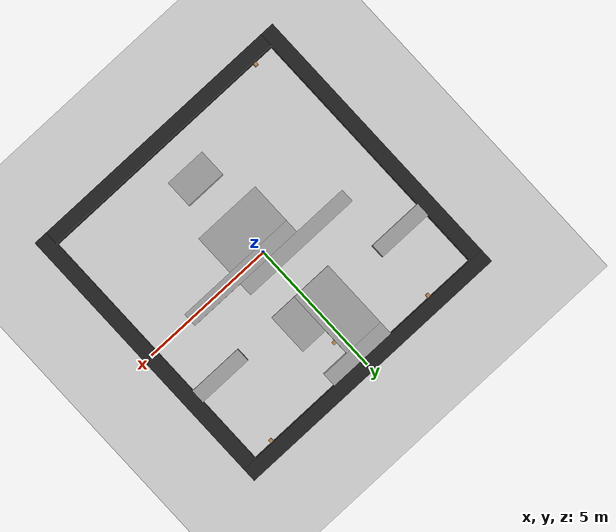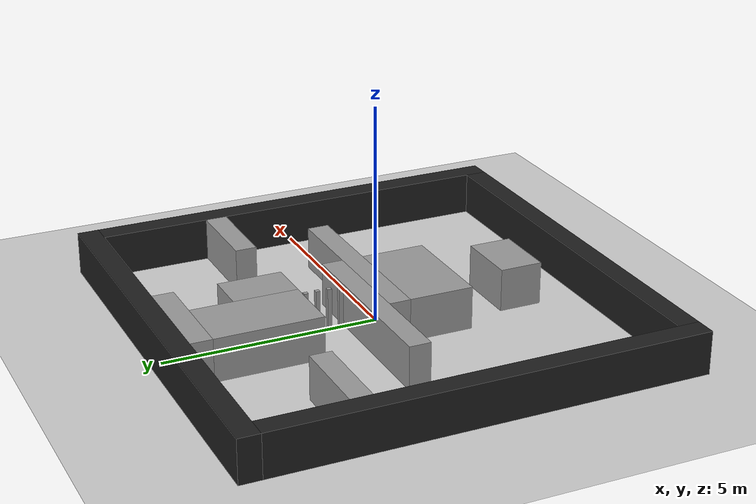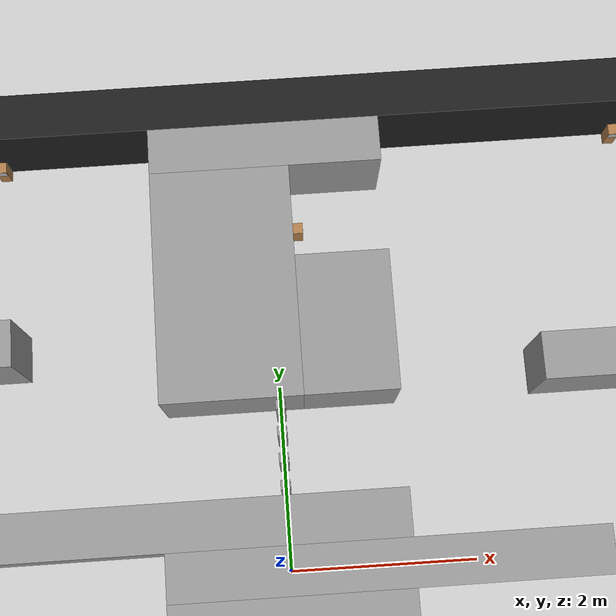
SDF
<?xml version='1.0'?>
<!-- GENERATED by tools/generate_worlds.py - edit the WORLDS table there, not this file. -->
<sdf version='1.7'>
  <world name='default'>
    <light name='sun' type='directional'>
      <cast_shadows>1</cast_shadows>
      <pose>0 0 10 0 -0 0</pose>
      <diffuse>0.8 0.8 0.8 1</diffuse>
      <specular>0.2 0.2 0.2 1</specular>
      <attenuation>
        <range>1000</range>
        <constant>0.9</constant>
        <linear>0.01</linear>
        <quadratic>0.001</quadratic>
      </attenuation>
      <direction>-0.5 0.1 -0.9</direction>
    </light>
    <model name='ground_plane'>
      <static>1</static>
      <link name='link'>
        <collision name='collision'>
          <geometry>
            <plane>
              <normal>0 0 1</normal>
              <size>100 100</size>
            </plane>
          </geometry>
          <surface>
            <friction>
              <ode>
                <mu>100</mu>
                <mu2>50</mu2>
              </ode>
            </friction>
          </surface>
          <max_contacts>10</max_contacts>
        </collision>
        <visual name='visual'>
          <cast_shadows>0</cast_shadows>
          <geometry>
            <plane>
              <normal>0 0 1</normal>
              <size>100 100</size>
            </plane>
          </geometry>
          <material>
            <script>
              <uri>file://media/materials/scripts/gazebo.material</uri>
              <name>Gazebo/Grey</name>
            </script>
          </material>
        </visual>
      </link>
    </model>
    <gravity>0 0 -9.8</gravity>
    <magnetic_field>6e-06 2.3e-05 -4.2e-05</magnetic_field>
    <atmosphere type='adiabatic'/>
    <physics type='ode'>
      <max_step_size>0.001</max_step_size>
      <real_time_factor>1</real_time_factor>
      <real_time_update_rate>1000</real_time_update_rate>
    </physics>
    <scene>
      <ambient>0.4 0.4 0.4 1</ambient>
      <background>0.7 0.7 0.7 1</background>
      <shadows>1</shadows>
    </scene>
    <gui fullscreen='0'>
      <camera name='user_camera'>
        <pose>0 0 20 0 1.57 0</pose>
        <view_controller>orbit</view_controller>
        <projection_type>perspective</projection_type>
      </camera>
    </gui>
    <model name='maze'>
      <static>1</static>
      <pose>0 0 0 0 0 0</pose>
      <link name='link'>
        <collision name='outer_wall_0_collision'>
          <pose>0.0000 5.0000 0.5 0 0 0</pose>
          <geometry>
            <box><size>10.5000 0.5000 1.0</size></box>
          </geometry>
          <max_contacts>10</max_contacts>
        </collision>
        <visual name='outer_wall_0_visual'>
          <pose>0.0000 5.0000 0.5 0 0 0</pose>
          <geometry>
            <box><size>10.5000 0.5000 1.0</size></box>
          </geometry>
          <material>
            <script>
              <name>Gazebo/Black</name>
              <uri>file://media/materials/scripts/gazebo.material</uri>
            </script>
          </material>
        </visual>
        <collision name='outer_wall_1_collision'>
          <pose>-5.0000 -0.2500 0.5 0 0 0</pose>
          <geometry>
            <box><size>0.5000 10.0000 1.0</size></box>
          </geometry>
          <max_contacts>10</max_contacts>
        </collision>
        <visual name='outer_wall_1_visual'>
          <pose>-5.0000 -0.2500 0.5 0 0 0</pose>
          <geometry>
            <box><size>0.5000 10.0000 1.0</size></box>
          </geometry>
          <material>
            <script>
              <name>Gazebo/Black</name>
              <uri>file://media/materials/scripts/gazebo.material</uri>
            </script>
          </material>
        </visual>
        <collision name='outer_wall_2_collision'>
          <pose>5.0000 -0.2500 0.5 0 0 0</pose>
          <geometry>
            <box><size>0.5000 10.0000 1.0</size></box>
          </geometry>
          <max_contacts>10</max_contacts>
        </collision>
        <visual name='outer_wall_2_visual'>
          <pose>5.0000 -0.2500 0.5 0 0 0</pose>
          <geometry>
            <box><size>0.5000 10.0000 1.0</size></box>
          </geometry>
          <material>
            <script>
              <name>Gazebo/Black</name>
              <uri>file://media/materials/scripts/gazebo.material</uri>
            </script>
          </material>
        </visual>
        <collision name='outer_wall_3_collision'>
          <pose>0.0000 -5.0000 0.5 0 0 0</pose>
          <geometry>
            <box><size>9.5000 0.5000 1.0</size></box>
          </geometry>
          <max_contacts>10</max_contacts>
        </collision>
        <visual name='outer_wall_3_visual'>
          <pose>0.0000 -5.0000 0.5 0 0 0</pose>
          <geometry>
            <box><size>9.5000 0.5000 1.0</size></box>
          </geometry>
          <material>
            <script>
              <name>Gazebo/Black</name>
              <uri>file://media/materials/scripts/gazebo.material</uri>
            </script>
          </material>
        </visual>
        <collision name='inner_wall_0_collision'>
          <pose>0.0000 4.5000 0.5 0 0 0</pose>
          <geometry>
            <box><size>2.5000 0.5000 1.0</size></box>
          </geometry>
          <max_contacts>10</max_contacts>
        </collision>
        <visual name='inner_wall_0_visual'>
          <pose>0.0000 4.5000 0.5 0 0 0</pose>
          <geometry>
            <box><size>2.5000 0.5000 1.0</size></box>
          </geometry>
          <material>
            <script>
              <name>Gazebo/Grey</name>
              <uri>file://media/materials/scripts/gazebo.material</uri>
            </script>
          </material>
        </visual>
        <collision name='inner_wall_1_collision'>
          <pose>-0.5000 3.0000 0.5 0 0 0</pose>
          <geometry>
            <box><size>1.5000 2.5000 1.0</size></box>
          </geometry>
          <max_contacts>10</max_contacts>
        </collision>
        <visual name='inner_wall_1_visual'>
          <pose>-0.5000 3.0000 0.5 0 0 0</pose>
          <geometry>
            <box><size>1.5000 2.5000 1.0</size></box>
          </geometry>
          <material>
            <script>
              <name>Gazebo/Grey</name>
              <uri>file://media/materials/scripts/gazebo.material</uri>
            </script>
          </material>
        </visual>
        <collision name='inner_wall_2_collision'>
          <pose>0.7500 2.5000 0.5 0 0 0</pose>
          <geometry>
            <box><size>1.0000 1.5000 1.0</size></box>
          </geometry>
          <max_contacts>10</max_contacts>
        </collision>
        <visual name='inner_wall_2_visual'>
          <pose>0.7500 2.5000 0.5 0 0 0</pose>
          <geometry>
            <box><size>1.0000 1.5000 1.0</size></box>
          </geometry>
          <material>
            <script>
              <name>Gazebo/Grey</name>
              <uri>file://media/materials/scripts/gazebo.material</uri>
            </script>
          </material>
        </visual>
        <collision name='inner_wall_3_collision'>
          <pose>-3.7500 2.5000 0.5 0 0 0</pose>
          <geometry>
            <box><size>2.0000 0.5000 1.0</size></box>
          </geometry>
          <max_contacts>10</max_contacts>
        </collision>
        <visual name='inner_wall_3_visual'>
          <pose>-3.7500 2.5000 0.5 0 0 0</pose>
          <geometry>
            <box><size>2.0000 0.5000 1.0</size></box>
          </geometry>
          <material>
            <script>
              <name>Gazebo/Grey</name>
              <uri>file://media/materials/scripts/gazebo.material</uri>
            </script>
          </material>
        </visual>
        <collision name='inner_wall_4_collision'>
          <pose>3.7500 2.0000 0.5 0 0 0</pose>
          <geometry>
            <box><size>2.0000 0.5000 1.0</size></box>
          </geometry>
          <max_contacts>10</max_contacts>
        </collision>
        <visual name='inner_wall_4_visual'>
          <pose>3.7500 2.0000 0.5 0 0 0</pose>
          <geometry>
            <box><size>2.0000 0.5000 1.0</size></box>
          </geometry>
          <material>
            <script>
              <name>Gazebo/Grey</name>
              <uri>file://media/materials/scripts/gazebo.material</uri>
            </script>
          </material>
        </visual>
        <collision name='inner_wall_5_collision'>
          <pose>-1.0000 0.5000 0.5 0 0 0</pose>
          <geometry>
            <box><size>4.5000 0.5000 1.0</size></box>
          </geometry>
          <max_contacts>10</max_contacts>
        </collision>
        <visual name='inner_wall_5_visual'>
          <pose>-1.0000 0.5000 0.5 0 0 0</pose>
          <geometry>
            <box><size>4.5000 0.5000 1.0</size></box>
          </geometry>
          <material>
            <script>
              <name>Gazebo/Grey</name>
              <uri>file://media/materials/scripts/gazebo.material</uri>
            </script>
          </material>
        </visual>
        <collision name='inner_wall_6_collision'>
          <pose>1.0000 0.0000 0.5 0 0 0</pose>
          <geometry>
            <box><size>4.5000 0.5000 1.0</size></box>
          </geometry>
          <max_contacts>10</max_contacts>
        </collision>
        <visual name='inner_wall_6_visual'>
          <pose>1.0000 0.0000 0.5 0 0 0</pose>
          <geometry>
            <box><size>4.5000 0.5000 1.0</size></box>
          </geometry>
          <material>
            <script>
              <name>Gazebo/Grey</name>
              <uri>file://media/materials/scripts/gazebo.material</uri>
            </script>
          </material>
        </visual>
        <collision name='inner_wall_7_collision'>
          <pose>0.0000 -1.0000 0.5 0 0 0</pose>
          <geometry>
            <box><size>2.5000 1.5000 1.0</size></box>
          </geometry>
          <max_contacts>10</max_contacts>
        </collision>
        <visual name='inner_wall_7_visual'>
          <pose>0.0000 -1.0000 0.5 0 0 0</pose>
          <geometry>
            <box><size>2.5000 1.5000 1.0</size></box>
          </geometry>
          <material>
            <script>
              <name>Gazebo/Grey</name>
              <uri>file://media/materials/scripts/gazebo.material</uri>
            </script>
          </material>
        </visual>
        <collision name='inner_wall_8_collision'>
          <pose>0.0000 -3.2500 0.5 0 0 0</pose>
          <geometry>
            <box><size>1.5000 1.0000 1.0</size></box>
          </geometry>
          <max_contacts>10</max_contacts>
        </collision>
        <visual name='inner_wall_8_visual'>
          <pose>0.0000 -3.2500 0.5 0 0 0</pose>
          <geometry>
            <box><size>1.5000 1.0000 1.0</size></box>
          </geometry>
          <material>
            <script>
              <name>Gazebo/Grey</name>
              <uri>file://media/materials/scripts/gazebo.material</uri>
            </script>
          </material>
        </visual>
        <collision name='extra_0_collision'>
          <pose>0.0000 1.6750 0.5 0 0 0.00000</pose>
          <geometry>
            <box><size>0.1000 0.1000 1.0</size></box>
          </geometry>
          <max_contacts>10</max_contacts>
        </collision>
        <visual name='extra_0_visual'>
          <pose>0.0000 1.6750 0.5 0 0 0.00000</pose>
          <geometry>
            <box><size>0.1000 0.1000 1.0</size></box>
          </geometry>
          <material>
            <script>
              <name>Gazebo/Grey</name>
              <uri>file://media/materials/scripts/gazebo.material</uri>
            </script>
          </material>
        </visual>
        <collision name='extra_1_collision'>
          <pose>0.0000 1.4000 0.5 0 0 0.00000</pose>
          <geometry>
            <box><size>0.1000 0.1000 1.0</size></box>
          </geometry>
          <max_contacts>10</max_contacts>
        </collision>
        <visual name='extra_1_visual'>
          <pose>0.0000 1.4000 0.5 0 0 0.00000</pose>
          <geometry>
            <box><size>0.1000 0.1000 1.0</size></box>
          </geometry>
          <material>
            <script>
              <name>Gazebo/Grey</name>
              <uri>file://media/materials/scripts/gazebo.material</uri>
            </script>
          </material>
        </visual>
        <collision name='extra_2_collision'>
          <pose>0.0000 1.1250 0.5 0 0 0.00000</pose>
          <geometry>
            <box><size>0.1000 0.1000 1.0</size></box>
          </geometry>
          <max_contacts>10</max_contacts>
        </collision>
        <visual name='extra_2_visual'>
          <pose>0.0000 1.1250 0.5 0 0 0.00000</pose>
          <geometry>
            <box><size>0.1000 0.1000 1.0</size></box>
          </geometry>
          <material>
            <script>
              <name>Gazebo/Grey</name>
              <uri>file://media/materials/scripts/gazebo.material</uri>
            </script>
          </material>
        </visual>
        <collision name='extra_3_collision'>
          <pose>0.0000 0.8500 0.5 0 0 0.00000</pose>
          <geometry>
            <box><size>0.1000 0.1000 1.0</size></box>
          </geometry>
          <max_contacts>10</max_contacts>
        </collision>
        <visual name='extra_3_visual'>
          <pose>0.0000 0.8500 0.5 0 0 0.00000</pose>
          <geometry>
            <box><size>0.1000 0.1000 1.0</size></box>
          </geometry>
          <material>
            <script>
              <name>Gazebo/Grey</name>
              <uri>file://media/materials/scripts/gazebo.material</uri>
            </script>
          </material>
        </visual>
      </link>
    </model>
    <model name='aruco_column_6x6_100mm_0'>
      <static>1</static>
      <pose>-3.0000 4.6900 0.0000 0.00000 0.00000 1.57080</pose>
      <link name='link'>
        <collision name='collision'>
          <pose>0 0 0.1500 0 0 0</pose>
          <geometry>
            <box>
              <size>0.12 0.12 0.3</size>
            </box>
          </geometry>
          <max_contacts>10</max_contacts>
        </collision>
        <visual name='visual'>
          <pose>0 0 0.1500 0 0 0</pose>
          <geometry>
            <box>
              <size>0.12 0.12 0.3</size>
            </box>
          </geometry>
          <material>
            <script>
              <uri>file://media/materials/scripts/gazebo.material</uri>
              <name>Gazebo/Wood</name>
            </script>
          </material>
        </visual>
        <visual name='aruco_6x6_100mm_0'>
          <pose>-0.06 0 0.24 0 1.5708 0</pose>
          <cast_shadows>0</cast_shadows>
          <geometry>
            <box>
              <size>0.1 0.1 0.001</size>
            </box>
          </geometry>
          <material>
            <script>
              <uri>file://media/materials/scripts</uri>
              <uri>file://media/materials/textures</uri>
              <name>tw_aruco_6x6_100mm_0</name>
            </script>
          </material>
        </visual>
      </link>
    </model>
    <model name='aruco_column_6x6_100mm_2'>
      <static>1</static>
      <pose>-4.0000 -4.6900 0.0000 0.00000 0.00000 -1.57080</pose>
      <link name='link'>
        <collision name='collision'>
          <pose>0 0 0.1500 0 0 0</pose>
          <geometry>
            <box>
              <size>0.12 0.12 0.3</size>
            </box>
          </geometry>
          <max_contacts>10</max_contacts>
        </collision>
        <visual name='visual'>
          <pose>0 0 0.1500 0 0 0</pose>
          <geometry>
            <box>
              <size>0.12 0.12 0.3</size>
            </box>
          </geometry>
          <material>
            <script>
              <uri>file://media/materials/scripts/gazebo.material</uri>
              <name>Gazebo/Wood</name>
            </script>
          </material>
        </visual>
        <visual name='aruco_6x6_100mm_2'>
          <pose>-0.06 0 0.24 0 1.5708 0</pose>
          <cast_shadows>0</cast_shadows>
          <geometry>
            <box>
              <size>0.1 0.1 0.001</size>
            </box>
          </geometry>
          <material>
            <script>
              <uri>file://media/materials/scripts</uri>
              <uri>file://media/materials/textures</uri>
              <name>tw_aruco_6x6_100mm_2</name>
            </script>
          </material>
        </visual>
      </link>
    </model>
    <model name='aruco_column_6x6_100mm_42'>
      <static>1</static>
      <pose>0.3100 3.7500 0.0000 0.00000 0.00000 3.14159</pose>
      <link name='link'>
        <collision name='collision'>
          <pose>0 0 0.1500 0 0 0</pose>
          <geometry>
            <box>
              <size>0.12 0.12 0.3</size>
            </box>
          </geometry>
          <max_contacts>10</max_contacts>
        </collision>
        <visual name='visual'>
          <pose>0 0 0.1500 0 0 0</pose>
          <geometry>
            <box>
              <size>0.12 0.12 0.3</size>
            </box>
          </geometry>
          <material>
            <script>
              <uri>file://media/materials/scripts/gazebo.material</uri>
              <name>Gazebo/Wood</name>
            </script>
          </material>
        </visual>
        <visual name='aruco_6x6_100mm_42'>
          <pose>-0.06 0 0.24 0 1.5708 0</pose>
          <cast_shadows>0</cast_shadows>
          <geometry>
            <box>
              <size>0.1 0.1 0.001</size>
            </box>
          </geometry>
          <material>
            <script>
              <uri>file://media/materials/scripts</uri>
              <uri>file://media/materials/textures</uri>
              <name>tw_aruco_6x6_100mm_42</name>
            </script>
          </material>
        </visual>
      </link>
    </model>
    <model name='aruco_column_6x6_100mm_7'>
      <static>1</static>
      <pose>4.0000 4.6900 0.0000 0.00000 0.00000 1.57080</pose>
      <link name='link'>
        <collision name='collision'>
          <pose>0 0 0.1500 0 0 0</pose>
          <geometry>
            <box>
              <size>0.12 0.12 0.3</size>
            </box>
          </geometry>
          <max_contacts>10</max_contacts>
        </collision>
        <visual name='visual'>
          <pose>0 0 0.1500 0 0 0</pose>
          <geometry>
            <box>
              <size>0.12 0.12 0.3</size>
            </box>
          </geometry>
          <material>
            <script>
              <uri>file://media/materials/scripts/gazebo.material</uri>
              <name>Gazebo/Wood</name>
            </script>
          </material>
        </visual>
        <visual name='aruco_6x6_100mm_7'>
          <pose>-0.06 0 0.24 0 1.5708 0</pose>
          <cast_shadows>0</cast_shadows>
          <geometry>
            <box>
              <size>0.1 0.1 0.001</size>
            </box>
          </geometry>
          <material>
            <script>
              <uri>file://media/materials/scripts</uri>
              <uri>file://media/materials/textures</uri>
              <name>tw_aruco_6x6_100mm_7</name>
            </script>
          </material>
        </visual>
      </link>
    </model>
  </world>
</sdf>
